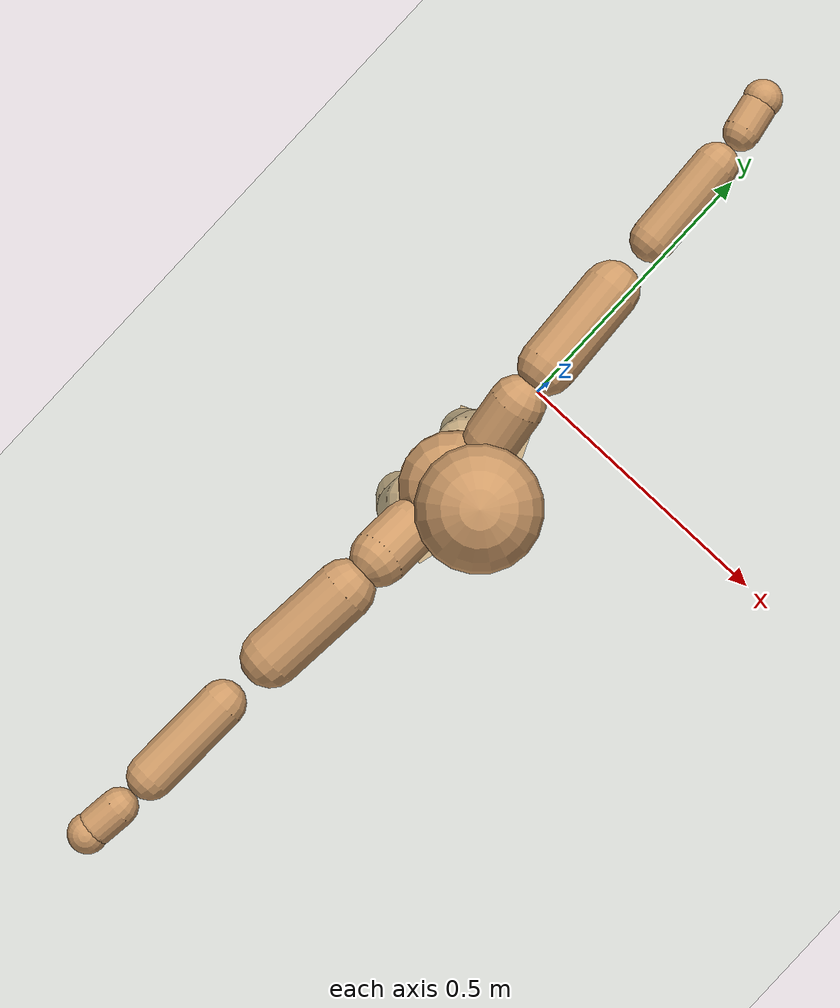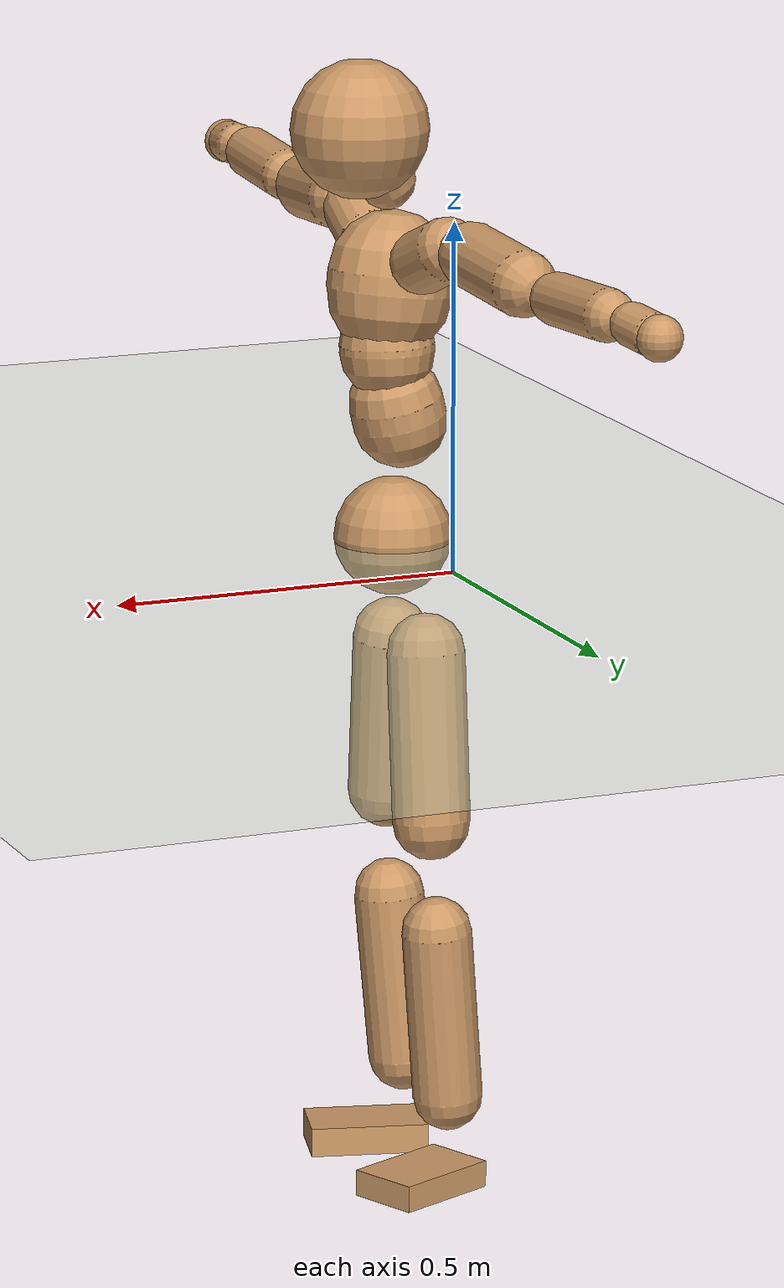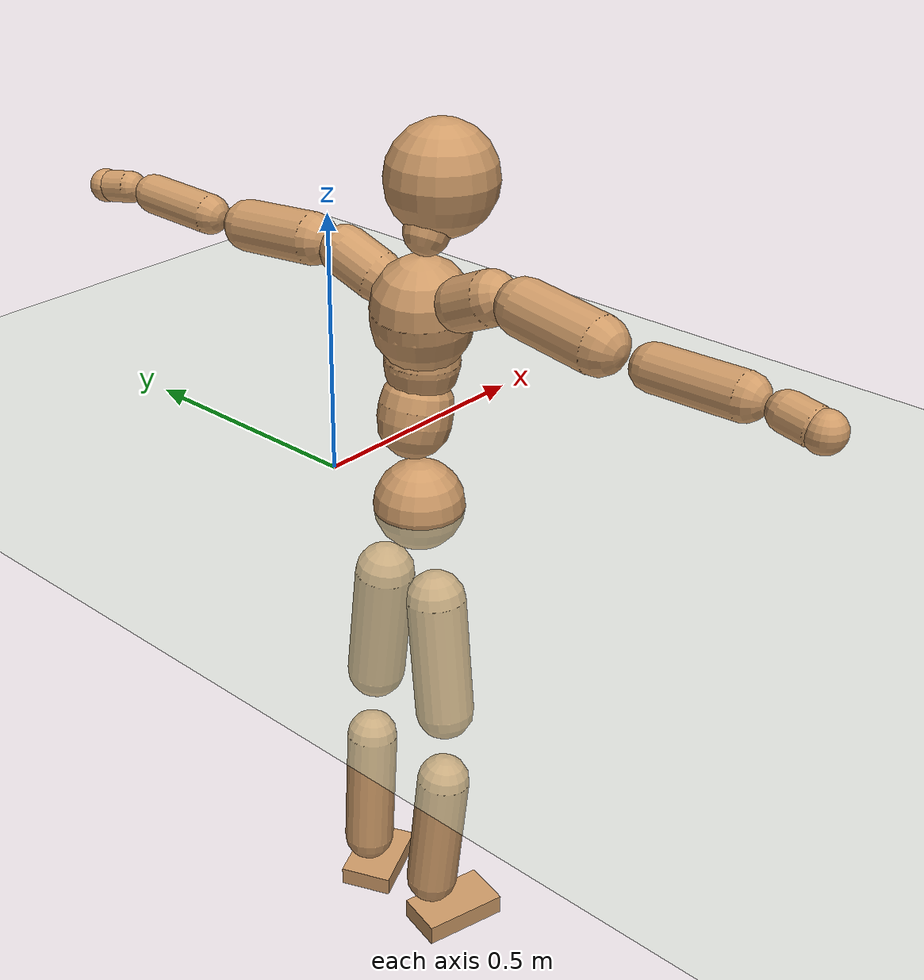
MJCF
<mujoco model="humanoid">
  <compiler coordinate="local" angle="radian"/>
  <default>
    <joint damping="0.0" armature="0.01" stiffness="0.0" limited="true"/>
    <geom conaffinity="1" condim="3" contype="7" margin="0.001" rgba="0.8 0.6 .4 1"/>
  </default>
  <asset>
    <texture type="skybox" builtin="gradient" rgb1=".4 .5 .6" rgb2="0 0 0" width="100" height="100"/>
    <texture builtin="flat" height="1278" mark="cross" markrgb="1 1 1" name="texgeom" random="0.01" rgb1="0.8 0.6 0.4" rgb2="0.8 0.6 0.4" type="cube" width="127"/>
    <texture builtin="checker" height="100" name="texplane" rgb1="0 0 0" rgb2="0.8 0.8 0.8" type="2d" width="100"/>
    <material name="MatPlane" reflectance="0.5" shininess="1" specular="1" texrepeat="60 60" texture="texplane"/>
    <material name="geom" texture="texgeom" texuniform="true"/>
  </asset>
  <worldbody>
    <light cutoff="100" diffuse="1 1 1" dir="-0 0 -1.3" directional="true" exponent="1" pos="0 0 1.3" specular=".1 .1 .1"/>
    <geom conaffinity="1" condim="3" name="floor" pos="0 0 0" rgba="0.8 0.9 0.8 1" size="100 100 .2" type="plane" material="MatPlane"/>
    <body name="Pelvis" pos="0.0009 -0.2199 0.0055">
      <freejoint name="Pelvis"/>
      <geom type="sphere" contype="1" conaffinity="1" density="500" size="0.0851" pos="0.0000 0.0000 0.0000" name="Pelvis"/>
      <body name="L_Hip" pos="-0.0264 0.0535 -0.0796">
        <joint name="L_Hip_x" type="hinge" pos="0 0 0" axis="1 0 0" stiffness="800" damping="80" armature="0.02" range="-180.0000 180.0000"/>
        <joint name="L_Hip_y" type="hinge" pos="0 0 0" axis="0 1 0" stiffness="800" damping="80" armature="0.02" range="-180.0000 180.0000"/>
        <joint name="L_Hip_z" type="hinge" pos="0 0 0" axis="0 0 1" stiffness="800" damping="80" armature="0.02" range="-180.0000 180.0000"/>
        <geom type="capsule" contype="1" conaffinity="1" density="500" fromto="0.0010 0.0098 -0.0810 0.0042 0.0393 -0.3239" size="0.0567" name="L_Hip"/>
        <body name="L_Knee" pos="0.0052 0.0491 -0.4049">
          <joint name="L_Knee_x" type="hinge" pos="0 0 0" axis="1 0 0" stiffness="800" damping="80" armature="0.02" range="-180.0000 180.0000"/>
          <joint name="L_Knee_y" type="hinge" pos="0 0 0" axis="0 1 0" stiffness="800" damping="80" armature="0.02" range="-180.0000 180.0000"/>
          <joint name="L_Knee_z" type="hinge" pos="0 0 0" axis="0 0 1" stiffness="800" damping="80" armature="0.02" range="-180.0000 180.0000"/>
          <geom type="capsule" contype="1" conaffinity="1" density="500" fromto="-0.0069 -0.0023 -0.0843 -0.0276 -0.0093 -0.3370" size="0.0508" name="L_Knee"/>
          <body name="L_Ankle" pos="-0.0345 -0.0116 -0.4213">
            <joint name="L_Ankle_x" type="hinge" pos="0 0 0" axis="1 0 0" stiffness="800" damping="80" armature="0.02" range="-180.0000 180.0000"/>
            <joint name="L_Ankle_y" type="hinge" pos="0 0 0" axis="0 1 0" stiffness="800" damping="80" armature="0.02" range="-180.0000 180.0000"/>
            <joint name="L_Ankle_z" type="hinge" pos="0 0 0" axis="0 0 1" stiffness="800" damping="80" armature="0.02" range="-180.0000 180.0000"/>
            <geom type="box" contype="1" conaffinity="1" density="500" pos="0.0571 0.0246 -0.0298" size="0.0801 0.0529 0.0196" quat="0.9793 0.0000 0.0000 0.2023" name="L_Ankle"/>
            <body name="L_Toe" pos="0.1142 0.0493 -0.0597">
              <joint name="L_Toe_x" type="hinge" pos="0 0 0" axis="1 0 0" stiffness="500" damping="50" armature="0.02" range="-180.0000 180.0000"/>
              <joint name="L_Toe_y" type="hinge" pos="0 0 0" axis="0 1 0" stiffness="500" damping="50" armature="0.02" range="-180.0000 180.0000"/>
              <joint name="L_Toe_z" type="hinge" pos="0 0 0" axis="0 0 1" stiffness="500" damping="50" armature="0.02" range="-180.0000 180.0000"/>
              <geom type="box" contype="1" conaffinity="1" density="500" pos="0.0000 0.0000 0.0316" size="0.001 0.0025 0.0011" quat="0.9785 0.0000 0.0000 0.2064" name="L_Toe"/>
            </body>
          </body>
        </body>
      </body>
      <body name="R_Hip" pos="-0.0239 -0.0563 -0.0874">
        <joint name="R_Hip_x" type="hinge" pos="0 0 0" axis="1 0 0" stiffness="800" damping="80" armature="0.02" range="-180.0000 180.0000"/>
        <joint name="R_Hip_y" type="hinge" pos="0 0 0" axis="0 1 0" stiffness="800" damping="80" armature="0.02" range="-180.0000 180.0000"/>
        <joint name="R_Hip_z" type="hinge" pos="0 0 0" axis="0 0 1" stiffness="800" damping="80" armature="0.02" range="-180.0000 180.0000"/>
        <geom type="capsule" contype="1" conaffinity="1" density="500" fromto="-0.0014 -0.0100 -0.0796 -0.0055 -0.0398 -0.3184" size="0.056" name="R_Hip"/>
        <body name="R_Knee" pos="-0.0069 -0.0498 -0.398">
          <joint name="R_Knee_x" type="hinge" pos="0 0 0" axis="1 0 0" stiffness="800" damping="80" armature="0.02" range="-180.0000 180.0000"/>
          <joint name="R_Knee_y" type="hinge" pos="0 0 0" axis="0 1 0" stiffness="800" damping="80" armature="0.02" range="-180.0000 180.0000"/>
          <joint name="R_Knee_z" type="hinge" pos="0 0 0" axis="0 0 1" stiffness="800" damping="80" armature="0.02" range="-180.0000 180.0000"/>
          <geom type="capsule" contype="1" conaffinity="1" density="500" fromto="-0.0063 0.0035 -0.0831 -0.0251 0.0139 -0.3323" size="0.0515" name="R_Knee"/>
          <body name="R_Ankle" pos="-0.0314 0.0174 -0.4154">
            <joint name="R_Ankle_x" type="hinge" pos="0 0 0" axis="1 0 0" stiffness="800" damping="80" armature="0.02" range="-180.0000 180.0000"/>
            <joint name="R_Ankle_y" type="hinge" pos="0 0 0" axis="0 1 0" stiffness="800" damping="80" armature="0.02" range="-180.0000 180.0000"/>
            <joint name="R_Ankle_z" type="hinge" pos="0 0 0" axis="0 0 1" stiffness="800" damping="80" armature="0.02" range="-180.0000 180.0000"/>
            <geom type="box" contype="1" conaffinity="1" density="500" pos="0.0615 -0.0159 -0.0321" size="0.0866 0.0485 0.0214" quat="0.9920 0.0000 0.0000 -0.1259" name="R_Ankle"/>
            <body name="R_Toe" pos="0.1231 -0.0317 -0.0642">
              <joint name="R_Toe_x" type="hinge" pos="0 0 0" axis="1 0 0" stiffness="500" damping="50" armature="0.02" range="-180.0000 180.0000"/>
              <joint name="R_Toe_y" type="hinge" pos="0 0 0" axis="0 1 0" stiffness="500" damping="50" armature="0.02" range="-180.0000 180.0000"/>
              <joint name="R_Toe_z" type="hinge" pos="0 0 0" axis="0 0 1" stiffness="500" damping="50" armature="0.02" range="-180.0000 180.0000"/>
              <geom type="box" contype="1" conaffinity="1" density="500" pos="0.0000 0.0000 0.0341" size="0.0009 0.0023 0.0012" quat="0.9932 0.0000 0.0000 -0.1165" name="R_Toe"/>
            </body>
          </body>
        </body>
      </body>
      <body name="Torso" pos="-0.0215 0.0044 0.1156">
        <joint name="Torso_x" type="hinge" pos="0 0 0" axis="1 0 0" stiffness="1000" damping="100" armature="0.02" range="-180.0000 180.0000"/>
        <joint name="Torso_y" type="hinge" pos="0 0 0" axis="0 1 0" stiffness="1000" damping="100" armature="0.02" range="-180.0000 180.0000"/>
        <joint name="Torso_z" type="hinge" pos="0 0 0" axis="0 0 1" stiffness="1000" damping="100" armature="0.02" range="-180.0000 180.0000"/>
        <geom type="capsule" contype="1" conaffinity="1" density="500" fromto="0.0197 0.0020 0.0804 0.0131 0.0014 0.0536" size="0.0679" name="Torso"/>
        <body name="Spine" pos="0.0329 0.0034 0.1341">
          <joint name="Spine_x" type="hinge" pos="0 0 0" axis="1 0 0" stiffness="1000" damping="100" armature="0.02" range="-180.0000 180.0000"/>
          <joint name="Spine_y" type="hinge" pos="0 0 0" axis="0 1 0" stiffness="1000" damping="100" armature="0.02" range="-180.0000 180.0000"/>
          <joint name="Spine_z" type="hinge" pos="0 0 0" axis="0 0 1" stiffness="1000" damping="100" armature="0.02" range="-180.0000 180.0000"/>
          <geom type="capsule" contype="1" conaffinity="1" density="500" fromto="0.0007 -0.0016 0.0317 0.0005 -0.0011 0.0211" size="0.0682" name="Spine"/>
          <body name="Chest" pos="0.0012 -0.0027 0.0528">
            <joint name="Chest_x" type="hinge" pos="0 0 0" axis="1 0 0" stiffness="1000" damping="100" armature="0.02" range="-180.0000 180.0000"/>
            <joint name="Chest_y" type="hinge" pos="0 0 0" axis="0 1 0" stiffness="1000" damping="100" armature="0.02" range="-180.0000 180.0000"/>
            <joint name="Chest_z" type="hinge" pos="0 0 0" axis="0 0 1" stiffness="1000" damping="100" armature="0.02" range="-180.0000 180.0000"/>
            <geom type="capsule" contype="1" conaffinity="1" density="500" fromto="-0.0098 -0.0053 0.0799 -0.0065 -0.0035 0.0533" size="0.091" name="Chest"/>
            <body name="Neck" pos="-0.0162 -0.0131 0.193">
              <joint name="Neck_x" type="hinge" pos="0 0 0" axis="1 0 0" stiffness="500" damping="50" armature="0.02" range="-180.0000 180.0000"/>
              <joint name="Neck_y" type="hinge" pos="0 0 0" axis="0 1 0" stiffness="500" damping="50" armature="0.02" range="-180.0000 180.0000"/>
              <joint name="Neck_z" type="hinge" pos="0 0 0" axis="0 0 1" stiffness="500" damping="50" armature="0.02" range="-180.0000 180.0000"/>
              <geom type="capsule" contype="1" conaffinity="1" density="500" fromto="0.0110 0.0019 0.0194 0.0438 0.0075 0.0774" size="0.0414" name="Neck"/>
              <body name="Head" pos="0.0548 0.0094 0.0968">
                <joint name="Head_x" type="hinge" pos="0 0 0" axis="1 0 0" stiffness="500" damping="50" armature="0.02" range="-180.0000 180.0000"/>
                <joint name="Head_y" type="hinge" pos="0 0 0" axis="0 1 0" stiffness="500" damping="50" armature="0.02" range="-180.0000 180.0000"/>
                <joint name="Head_z" type="hinge" pos="0 0 0" axis="0 0 1" stiffness="500" damping="50" armature="0.02" range="-180.0000 180.0000"/>
                <geom type="sphere" contype="1" conaffinity="1" density="500" size="0.0992" pos="0.0000 0.0000 0.0000" name="Head"/>
              </body>
            </body>
            <body name="L_Thorax" pos="-0.015 0.068 0.1032">
              <joint name="L_Thorax_x" type="hinge" pos="0 0 0" axis="1 0 0" stiffness="500" damping="50" armature="0.02" range="-180.0000 180.0000"/>
              <joint name="L_Thorax_y" type="hinge" pos="0 0 0" axis="0 1 0" stiffness="500" damping="50" armature="0.02" range="-180.0000 180.0000"/>
              <joint name="L_Thorax_z" type="hinge" pos="0 0 0" axis="0 0 1" stiffness="500" damping="50" armature="0.02" range="-180.0000 180.0000"/>
              <geom type="capsule" contype="1" conaffinity="1" density="500" fromto="-0.0030 0.0224 0.0095 -0.0119 0.0896 0.0382" size="0.0465" name="L_Thorax"/>
              <body name="L_Shoulder" pos="-0.0149 0.112 0.0477">
                <joint name="L_Shoulder_x" type="hinge" pos="0 0 0" axis="1 0 0" stiffness="500" damping="50" armature="0.02" range="-720.0000 720.0000"/>
                <joint name="L_Shoulder_y" type="hinge" pos="0 0 0" axis="0 1 0" stiffness="500" damping="50" armature="0.02" range="-720.0000 720.0000"/>
                <joint name="L_Shoulder_z" type="hinge" pos="0 0 0" axis="0 0 1" stiffness="500" damping="50" armature="0.02" range="-720.0000 720.0000"/>
                <geom type="capsule" contype="1" conaffinity="1" density="500" fromto="-0.0029 0.0523 -0.0038 -0.0114 0.2093 -0.0153" size="0.0471" name="L_Shoulder"/>
                <body name="L_Elbow" pos="-0.0143 0.2617 -0.0191">
                  <joint name="L_Elbow_x" type="hinge" pos="0 0 0" axis="1 0 0" stiffness="500" damping="50" armature="0.02" range="-720.0000 720.0000"/>
                  <joint name="L_Elbow_y" type="hinge" pos="0 0 0" axis="0 1 0" stiffness="500" damping="50" armature="0.02" range="-720.0000 720.0000"/>
                  <joint name="L_Elbow_z" type="hinge" pos="0 0 0" axis="0 0 1" stiffness="500" damping="50" armature="0.02" range="-720.0000 720.0000"/>
                  <geom type="capsule" contype="1" conaffinity="1" density="500" fromto="-0.0024 0.0506 0.0020 -0.0095 0.2025 0.0081" size="0.0368" name="L_Elbow"/>
                  <body name="L_Wrist" pos="-0.0118 0.2531 0.0102">
                    <joint name="L_Wrist_x" type="hinge" pos="0 0 0" axis="1 0 0" stiffness="300" damping="30" armature="0.02" range="-180.0000 180.0000"/>
                    <joint name="L_Wrist_y" type="hinge" pos="0 0 0" axis="0 1 0" stiffness="300" damping="30" armature="0.02" range="-180.0000 180.0000"/>
                    <joint name="L_Wrist_z" type="hinge" pos="0 0 0" axis="0 0 1" stiffness="300" damping="30" armature="0.02" range="-180.0000 180.0000"/>
                    <geom type="capsule" contype="1" conaffinity="1" density="500" fromto="-0.0028 0.0154 -0.0019 -0.0114 0.0618 -0.0076" size="0.0302" name="L_Wrist"/>
                    <body name="L_Hand" pos="-0.0142 0.0772 -0.0095">
                      <joint name="L_Hand_x" type="hinge" pos="0 0 0" axis="1 0 0" stiffness="300" damping="30" armature="0.02" range="-180.0000 180.0000"/>
                      <joint name="L_Hand_y" type="hinge" pos="0 0 0" axis="0 1 0" stiffness="300" damping="30" armature="0.02" range="-180.0000 180.0000"/>
                      <joint name="L_Hand_z" type="hinge" pos="0 0 0" axis="0 0 1" stiffness="300" damping="30" armature="0.02" range="-180.0000 180.0000"/>
                      <geom type="sphere" contype="1" conaffinity="1" density="500" size="0.0317" pos="0.0000 0.0000 0.0000" name="L_Hand"/>
                    </body>
                  </body>
                </body>
              </body>
            </body>
            <body name="R_Thorax" pos="-0.0177 -0.0814 0.1035">
              <joint name="R_Thorax_x" type="hinge" pos="0 0 0" axis="1 0 0" stiffness="500" damping="50" armature="0.02" range="-180.0000 180.0000"/>
              <joint name="R_Thorax_y" type="hinge" pos="0 0 0" axis="0 1 0" stiffness="500" damping="50" armature="0.02" range="-180.0000 180.0000"/>
              <joint name="R_Thorax_z" type="hinge" pos="0 0 0" axis="0 0 1" stiffness="500" damping="50" armature="0.02" range="-180.0000 180.0000"/>
              <geom type="capsule" contype="1" conaffinity="1" density="500" fromto="-0.0009 -0.0212 0.0099 -0.0038 -0.0847 0.0394" size="0.0475" name="R_Thorax"/>
              <body name="R_Shoulder" pos="-0.0047 -0.1059 0.0493">
                <joint name="R_Shoulder_x" type="hinge" pos="0 0 0" axis="1 0 0" stiffness="500" damping="50" armature="0.02" range="-720.0000 720.0000"/>
                <joint name="R_Shoulder_y" type="hinge" pos="0 0 0" axis="0 1 0" stiffness="500" damping="50" armature="0.02" range="-720.0000 720.0000"/>
                <joint name="R_Shoulder_z" type="hinge" pos="0 0 0" axis="0 0 1" stiffness="500" damping="50" armature="0.02" range="-720.0000 720.0000"/>
                <geom type="capsule" contype="1" conaffinity="1" density="500" fromto="-0.0043 -0.0525 -0.0043 -0.0172 -0.2098 -0.0172" size="0.0493" name="R_Shoulder"/>
                <body name="R_Elbow" pos="-0.0215 -0.2623 -0.0215">
                  <joint name="R_Elbow_x" type="hinge" pos="0 0 0" axis="1 0 0" stiffness="500" damping="50" armature="0.02" range="-720.0000 720.0000"/>
                  <joint name="R_Elbow_y" type="hinge" pos="0 0 0" axis="0 1 0" stiffness="500" damping="50" armature="0.02" range="-720.0000 720.0000"/>
                  <joint name="R_Elbow_z" type="hinge" pos="0 0 0" axis="0 0 1" stiffness="500" damping="50" armature="0.02" range="-720.0000 720.0000"/>
                  <geom type="capsule" contype="1" conaffinity="1" density="500" fromto="-0.0017 -0.0531 0.0022 -0.0067 -0.2125 0.0090" size="0.0385" name="R_Elbow"/>
                  <body name="R_Wrist" pos="-0.0083 -0.2656 0.0112">
                    <joint name="R_Wrist_x" type="hinge" pos="0 0 0" axis="1 0 0" stiffness="300" damping="30" armature="0.02" range="-180.0000 180.0000"/>
                    <joint name="R_Wrist_y" type="hinge" pos="0 0 0" axis="0 1 0" stiffness="300" damping="30" armature="0.02" range="-180.0000 180.0000"/>
                    <joint name="R_Wrist_z" type="hinge" pos="0 0 0" axis="0 0 1" stiffness="300" damping="30" armature="0.02" range="-180.0000 180.0000"/>
                    <geom type="capsule" contype="1" conaffinity="1" density="500" fromto="-0.0019 -0.0162 -0.0015 -0.0076 -0.0647 -0.0061" size="0.0315" name="R_Wrist"/>
                    <body name="R_Hand" pos="-0.0095 -0.0809 -0.0077">
                      <joint name="R_Hand_x" type="hinge" pos="0 0 0" axis="1 0 0" stiffness="300" damping="30" armature="0.02" range="-180.0000 180.0000"/>
                      <joint name="R_Hand_y" type="hinge" pos="0 0 0" axis="0 1 0" stiffness="300" damping="30" armature="0.02" range="-180.0000 180.0000"/>
                      <joint name="R_Hand_z" type="hinge" pos="0 0 0" axis="0 0 1" stiffness="300" damping="30" armature="0.02" range="-180.0000 180.0000"/>
                      <geom type="sphere" contype="1" conaffinity="1" density="500" size="0.0329" pos="0.0000 0.0000 0.0000" name="R_Hand"/>
                    </body>
                  </body>
                </body>
              </body>
            </body>
          </body>
        </body>
      </body>
    </body>
  </worldbody>
  <actuator>
    <motor name="L_Hip_x" joint="L_Hip_x" gear="500"/>
    <motor name="L_Hip_y" joint="L_Hip_y" gear="500"/>
    <motor name="L_Hip_z" joint="L_Hip_z" gear="500"/>
    <motor name="L_Knee_x" joint="L_Knee_x" gear="500"/>
    <motor name="L_Knee_y" joint="L_Knee_y" gear="500"/>
    <motor name="L_Knee_z" joint="L_Knee_z" gear="500"/>
    <motor name="L_Ankle_x" joint="L_Ankle_x" gear="500"/>
    <motor name="L_Ankle_y" joint="L_Ankle_y" gear="500"/>
    <motor name="L_Ankle_z" joint="L_Ankle_z" gear="500"/>
    <motor name="L_Toe_x" joint="L_Toe_x" gear="500"/>
    <motor name="L_Toe_y" joint="L_Toe_y" gear="500"/>
    <motor name="L_Toe_z" joint="L_Toe_z" gear="500"/>
    <motor name="R_Hip_x" joint="R_Hip_x" gear="500"/>
    <motor name="R_Hip_y" joint="R_Hip_y" gear="500"/>
    <motor name="R_Hip_z" joint="R_Hip_z" gear="500"/>
    <motor name="R_Knee_x" joint="R_Knee_x" gear="500"/>
    <motor name="R_Knee_y" joint="R_Knee_y" gear="500"/>
    <motor name="R_Knee_z" joint="R_Knee_z" gear="500"/>
    <motor name="R_Ankle_x" joint="R_Ankle_x" gear="500"/>
    <motor name="R_Ankle_y" joint="R_Ankle_y" gear="500"/>
    <motor name="R_Ankle_z" joint="R_Ankle_z" gear="500"/>
    <motor name="R_Toe_x" joint="R_Toe_x" gear="500"/>
    <motor name="R_Toe_y" joint="R_Toe_y" gear="500"/>
    <motor name="R_Toe_z" joint="R_Toe_z" gear="500"/>
    <motor name="Torso_x" joint="Torso_x" gear="500"/>
    <motor name="Torso_y" joint="Torso_y" gear="500"/>
    <motor name="Torso_z" joint="Torso_z" gear="500"/>
    <motor name="Spine_x" joint="Spine_x" gear="500"/>
    <motor name="Spine_y" joint="Spine_y" gear="500"/>
    <motor name="Spine_z" joint="Spine_z" gear="500"/>
    <motor name="Chest_x" joint="Chest_x" gear="500"/>
    <motor name="Chest_y" joint="Chest_y" gear="500"/>
    <motor name="Chest_z" joint="Chest_z" gear="500"/>
    <motor name="Neck_x" joint="Neck_x" gear="500"/>
    <motor name="Neck_y" joint="Neck_y" gear="500"/>
    <motor name="Neck_z" joint="Neck_z" gear="500"/>
    <motor name="Head_x" joint="Head_x" gear="500"/>
    <motor name="Head_y" joint="Head_y" gear="500"/>
    <motor name="Head_z" joint="Head_z" gear="500"/>
    <motor name="L_Thorax_x" joint="L_Thorax_x" gear="500"/>
    <motor name="L_Thorax_y" joint="L_Thorax_y" gear="500"/>
    <motor name="L_Thorax_z" joint="L_Thorax_z" gear="500"/>
    <motor name="L_Shoulder_x" joint="L_Shoulder_x" gear="500"/>
    <motor name="L_Shoulder_y" joint="L_Shoulder_y" gear="500"/>
    <motor name="L_Shoulder_z" joint="L_Shoulder_z" gear="500"/>
    <motor name="L_Elbow_x" joint="L_Elbow_x" gear="500"/>
    <motor name="L_Elbow_y" joint="L_Elbow_y" gear="500"/>
    <motor name="L_Elbow_z" joint="L_Elbow_z" gear="500"/>
    <motor name="L_Wrist_x" joint="L_Wrist_x" gear="500"/>
    <motor name="L_Wrist_y" joint="L_Wrist_y" gear="500"/>
    <motor name="L_Wrist_z" joint="L_Wrist_z" gear="500"/>
    <motor name="L_Hand_x" joint="L_Hand_x" gear="500"/>
    <motor name="L_Hand_y" joint="L_Hand_y" gear="500"/>
    <motor name="L_Hand_z" joint="L_Hand_z" gear="500"/>
    <motor name="R_Thorax_x" joint="R_Thorax_x" gear="500"/>
    <motor name="R_Thorax_y" joint="R_Thorax_y" gear="500"/>
    <motor name="R_Thorax_z" joint="R_Thorax_z" gear="500"/>
    <motor name="R_Shoulder_x" joint="R_Shoulder_x" gear="500"/>
    <motor name="R_Shoulder_y" joint="R_Shoulder_y" gear="500"/>
    <motor name="R_Shoulder_z" joint="R_Shoulder_z" gear="500"/>
    <motor name="R_Elbow_x" joint="R_Elbow_x" gear="500"/>
    <motor name="R_Elbow_y" joint="R_Elbow_y" gear="500"/>
    <motor name="R_Elbow_z" joint="R_Elbow_z" gear="500"/>
    <motor name="R_Wrist_x" joint="R_Wrist_x" gear="500"/>
    <motor name="R_Wrist_y" joint="R_Wrist_y" gear="500"/>
    <motor name="R_Wrist_z" joint="R_Wrist_z" gear="500"/>
    <motor name="R_Hand_x" joint="R_Hand_x" gear="500"/>
    <motor name="R_Hand_y" joint="R_Hand_y" gear="500"/>
    <motor name="R_Hand_z" joint="R_Hand_z" gear="500"/>
  </actuator>
  <contact>
    <exclude body1="Torso" body2="Chest"/>
    <exclude body1="Head" body2="Chest"/>
    <exclude body1="R_Knee" body2="R_Toe"/>
    <exclude body1="R_Knee" body2="L_Ankle"/>
    <exclude body1="R_Knee" body2="L_Toe"/>
    <exclude body1="L_Knee" body2="L_Toe"/>
    <exclude body1="L_Knee" body2="R_Ankle"/>
    <exclude body1="L_Knee" body2="R_Toe"/>
    <exclude body1="L_Shoulder" body2="Chest"/>
    <exclude body1="R_Shoulder" body2="Chest"/>
  </contact>
  <sensor/>
  <size njmax="700" nconmax="700"/>
</mujoco>
